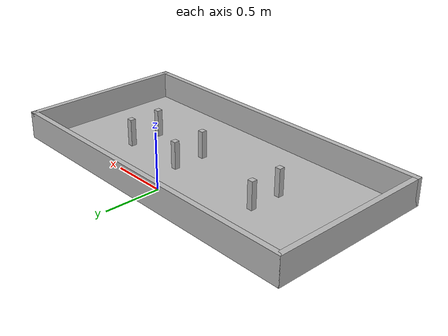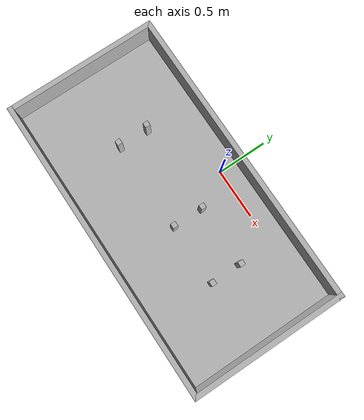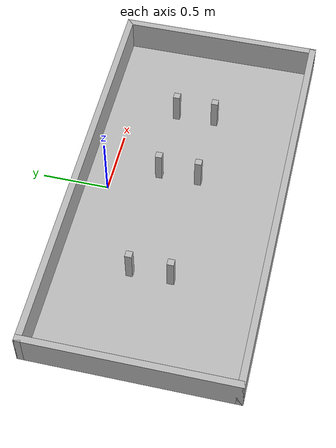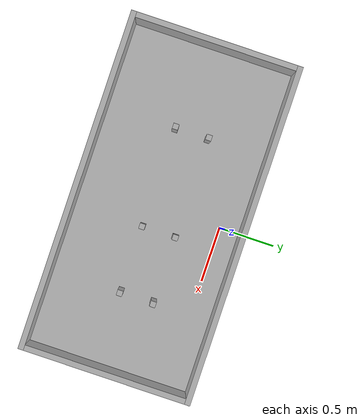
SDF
<?xml version="1.0" ?>

<sdf version="1.8">
	<world name="default">
    <physics name="1ms" type="ignored">
      <max_step_size>0.001</max_step_size>
      <real_time_factor>1.0</real_time_factor>
    </physics>
    <plugin filename="ignition-gazebo-physics-system" name="ignition::gazebo::systems::Physics">
    </plugin>
    <plugin filename="ignition-gazebo-user-commands-system" name="ignition::gazebo::systems::UserCommands">
    </plugin>
    <plugin filename="ignition-gazebo-scene-broadcaster-system" name="ignition::gazebo::systems::SceneBroadcaster">
    </plugin>
    <plugin filename="ignition-gazebo-sensors-system" name="ignition::gazebo::systems::Sensors">
      <render_engine>ogre2</render_engine>
    </plugin>
    <plugin filename="ignition-gazebo-imu-system" name="ignition::gazebo::systems::Imu"/>

    <light name="sun" type="directional">
      <pose>0 0 10 0 0 0</pose>
      <cast_shadows>true</cast_shadows>
      <diffuse>0.8 0.8 0.8 1</diffuse>
      <specular>0.2 0.2 0.2 1</specular>
      <direction>-0.5 0.1 -0.9</direction>
    </light>

		<!-- simulation table -->
		<include>
			<uri>model://simulation_table_small</uri>
			<pose>0.0 -0.55 0 0 0 0</pose>
		</include>
	</world>
</sdf>

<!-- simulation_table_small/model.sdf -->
<sdf version="1.8">
  <model name="simulation_table_small">
    <static>true</static>
    <link name="floor">
      <collision name="collision">
        <geometry>
          <plane>
            <normal>0 0 1</normal>
            <size>3.0 1.5</size>
          </plane>
        </geometry>
        <surface>
          <friction>
            <ode>
              <mu>100</mu>
              <mu2>50</mu2>
            </ode>
          </friction>
        </surface>
      </collision>
      <visual name="visual">
        <cast_shadows>false</cast_shadows>
        <geometry>
          <plane>
            <normal>0 0 1</normal>
            <size>3.0 1.5</size>
          </plane>
        </geometry>
        <material>
          <script>
            <uri>model://simulation_table_small/materials/scripts/</uri>
            <uri>model://simulation_table_small/materials/textures/</uri>
            <name>SimulationTableSmall/Background</name>
          </script>
        </material>
      </visual>
    </link>
    <link name="side_1">
      <pose relative_to="floor">0.0 0.75 0.125 1.57079632679 0 0</pose>
      <collision name="collision">
        <geometry>
          <box>
            <size>3.05 0.25 0.05</size>
          </box>
        </geometry>
        <surface>
          <friction>
            <ode>
              <mu>100</mu>
              <mu2>50</mu2>
            </ode>
          </friction>
        </surface>
      </collision>
      <visual name="visual">
        <cast_shadows>false</cast_shadows>
        <geometry>
          <box>
            <size>3.05 0.25 0.05</size>
          </box>
        </geometry>
      </visual>
    </link>
    <link name="side_2">
      <pose relative_to="floor">0.0 -0.75 0.125 1.57079632679 0 0</pose>
      <collision name="collision">
        <geometry>
          <box>
            <size>3.05 0.25 0.05</size>
          </box>
        </geometry>
        <surface>
          <friction>
            <ode>
              <mu>100</mu>
              <mu2>50</mu2>
            </ode>
          </friction>
        </surface>
      </collision>
      <visual name="visual">
        <cast_shadows>false</cast_shadows>
        <geometry>
          <box>
            <size>3.05 0.25 0.05</size>
          </box>
        </geometry>
      </visual>
    </link>
    <link name="side_3">
      <pose relative_to="floor">1.5 0.0 0.125 1.57079632679 0 1.57079632679</pose>
      <collision name="collision">
        <geometry>
          <box>
            <size>1.55 0.25 0.05</size>
          </box>
        </geometry>
        <surface>
          <friction>
            <ode>
              <mu>100</mu>
              <mu2>50</mu2>
            </ode>
          </friction>
        </surface>
      </collision>
      <visual name="visual">
        <cast_shadows>false</cast_shadows>
        <geometry>
          <box>
            <size>1.55 0.25 0.05</size>
          </box>
        </geometry>
      </visual>
    </link>
    <link name="side_4">
      <pose relative_to="floor">-1.5 0.0 0.125 1.57079632679 0 1.57079632679</pose>
      <collision name="collision">
        <geometry>
          <box>
            <size>1.55 0.25 0.05</size>
          </box>
        </geometry>
        <surface>
          <friction>
            <ode>
              <mu>100</mu>
              <mu2>50</mu2>
            </ode>
          </friction>
        </surface>
      </collision>
      <visual name="visual">
        <cast_shadows>false</cast_shadows>
        <geometry>
          <box>
            <size>1.55 0.25 0.05</size>
          </box>
        </geometry>
      </visual>
    </link>
    <link name="obstacle_1">
      <pose relative_to="floor">-0.7 0.20 0.125 0 0 0</pose>
      <collision name="collision">
        <geometry>
          <box>
            <size>0.05 0.05 0.25</size>
          </box>
        </geometry>
        <surface>
          <friction>
            <ode>
              <mu>100</mu>
              <mu2>50</mu2>
            </ode>
          </friction>
        </surface>
      </collision>
      <visual name="visual">
        <cast_shadows>false</cast_shadows>
        <geometry>
          <box>
            <size>0.05 0.05 0.25</size>
          </box>
        </geometry>
      </visual>
    </link>
    <link name="obstacle_2">
      <pose relative_to="floor">0.2 0.20 0.125 0 0 0</pose>
      <collision name="collision">
        <geometry>
          <box>
            <size>0.05 0.05 0.25</size>
          </box>
        </geometry>
        <surface>
          <friction>
            <ode>
              <mu>100</mu>
              <mu2>50</mu2>
            </ode>
          </friction>
        </surface>
      </collision>
      <visual name="visual">
        <cast_shadows>false</cast_shadows>
        <geometry>
          <box>
            <size>0.05 0.05 0.25</size>
          </box>
        </geometry>
      </visual>
    </link>
    <link name="obstacle_3">
      <pose relative_to="floor">0.8 0.20 0.125 0 0 0</pose>
      <collision name="collision">
        <geometry>
          <box>
            <size>0.05 0.05 0.25</size>
          </box>
        </geometry>
        <surface>
          <friction>
            <ode>
              <mu>100</mu>
              <mu2>50</mu2>
            </ode>
          </friction>
        </surface>
      </collision>
      <visual name="visual">
        <cast_shadows>false</cast_shadows>
        <geometry>
          <box>
            <size>0.05 0.05 0.25</size>
          </box>
        </geometry>
      </visual>
    </link>
    <link name="obstacle_4">
      <pose relative_to="floor">-0.7 -0.10 0.125 0 0 0</pose>
      <collision name="collision">
        <geometry>
          <box>
            <size>0.05 0.05 0.25</size>
          </box>
        </geometry>
        <surface>
          <friction>
            <ode>
              <mu>100</mu>
              <mu2>50</mu2>
            </ode>
          </friction>
        </surface>
      </collision>
      <visual name="visual">
        <cast_shadows>false</cast_shadows>
        <geometry>
          <box>
            <size>0.05 0.05 0.25</size>
          </box>
        </geometry>
      </visual>
    </link>
    <link name="obstacle_5">
      <pose relative_to="floor">0.2 -0.10 0.125 0 0 0</pose>
      <collision name="collision">
        <geometry>
          <box>
            <size>0.05 0.05 0.25</size>
          </box>
        </geometry>
        <surface>
          <friction>
            <ode>
              <mu>100</mu>
              <mu2>50</mu2>
            </ode>
          </friction>
        </surface>
      </collision>
      <visual name="visual">
        <cast_shadows>false</cast_shadows>
        <geometry>
          <box>
            <size>0.05 0.05 0.25</size>
          </box>
        </geometry>
      </visual>
    </link>
    <link name="obstacle_6">
      <pose relative_to="floor">0.8 -0.10 0.125 0 0 0</pose>
      <collision name="collision">
        <geometry>
          <box>
            <size>0.05 0.05 0.25</size>
          </box>
        </geometry>
        <surface>
          <friction>
            <ode>
              <mu>100</mu>
              <mu2>50</mu2>
            </ode>
          </friction>
        </surface>
      </collision>
      <visual name="visual">
        <cast_shadows>false</cast_shadows>
        <geometry>
          <box>
            <size>0.05 0.05 0.25</size>
          </box>
        </geometry>
      </visual>
    </link>
  </model>
</sdf>
